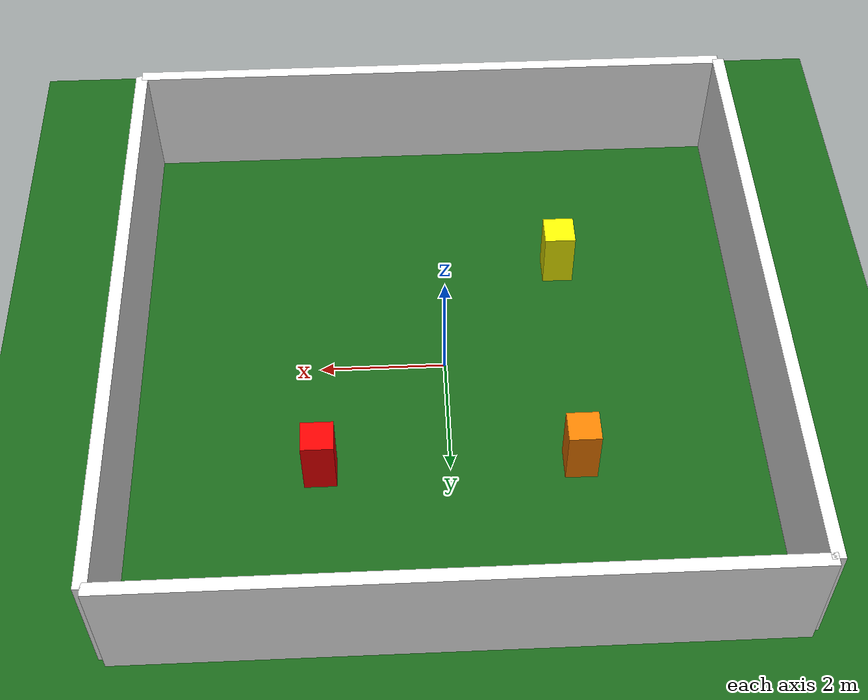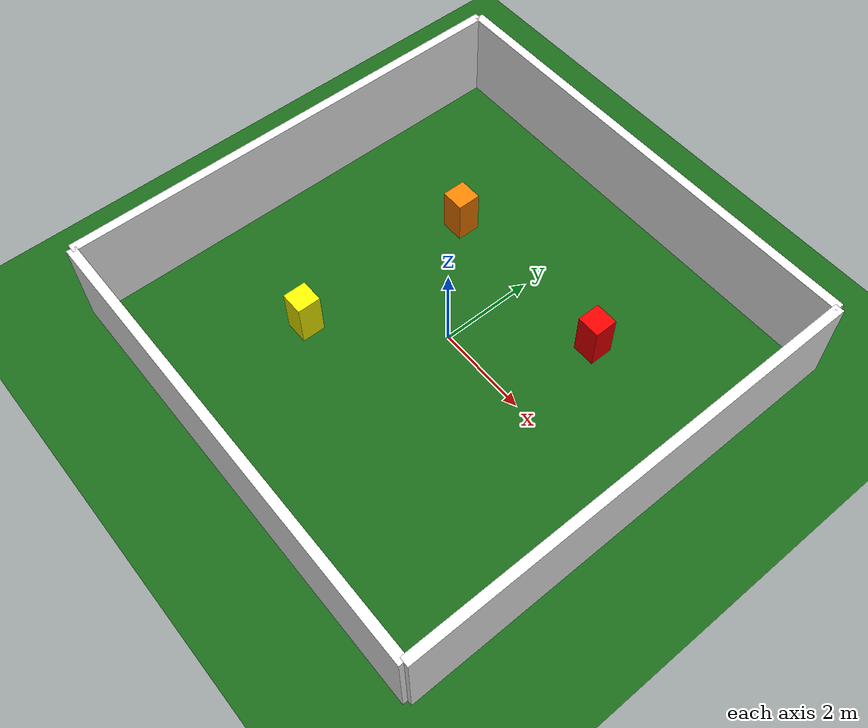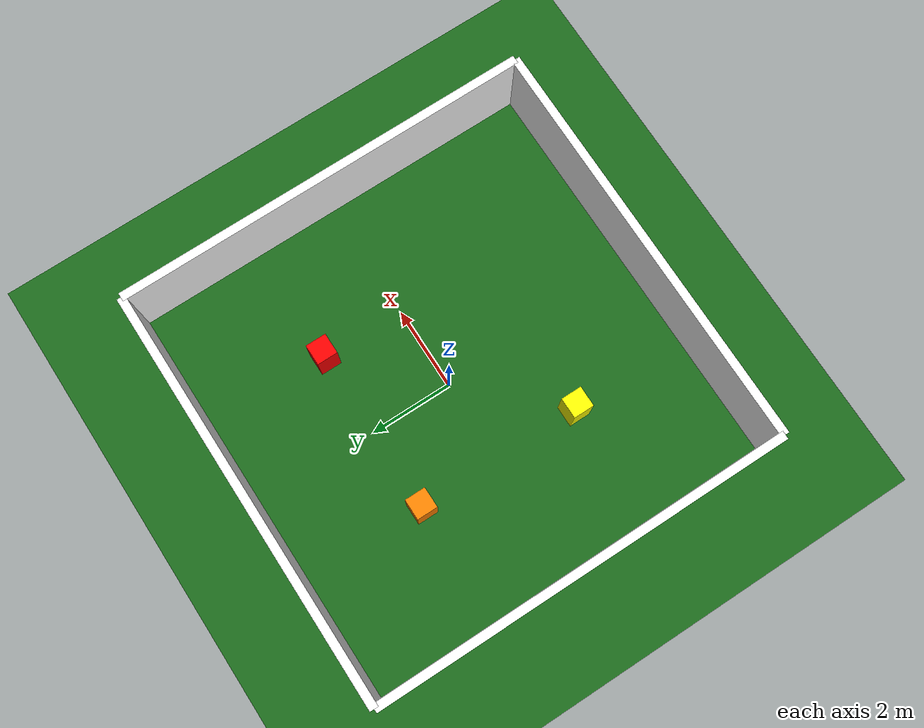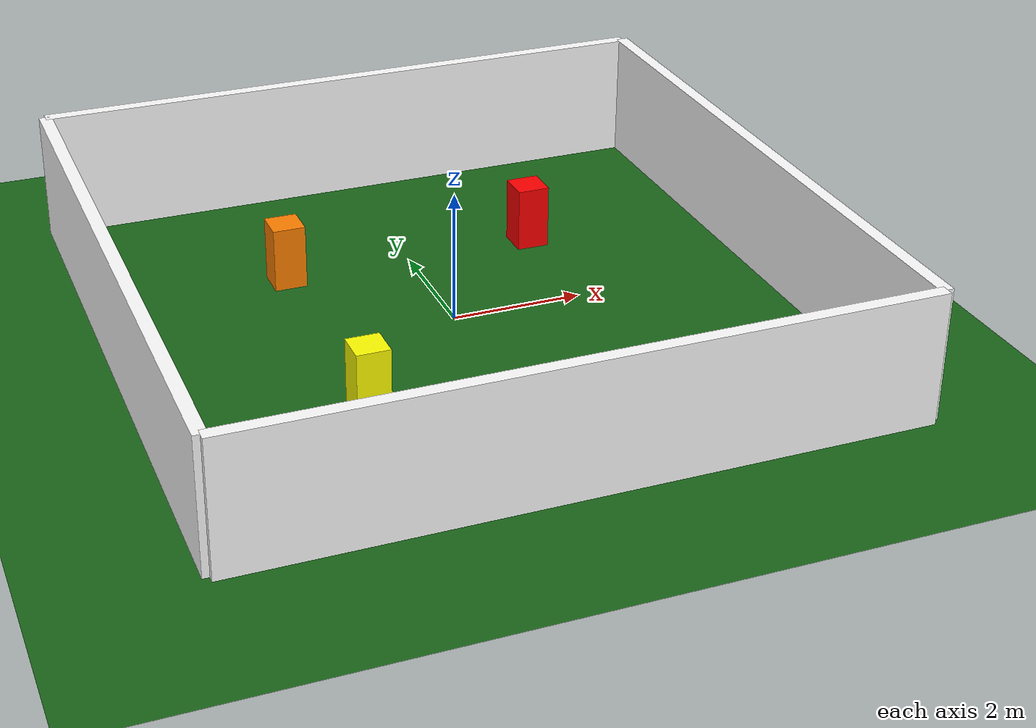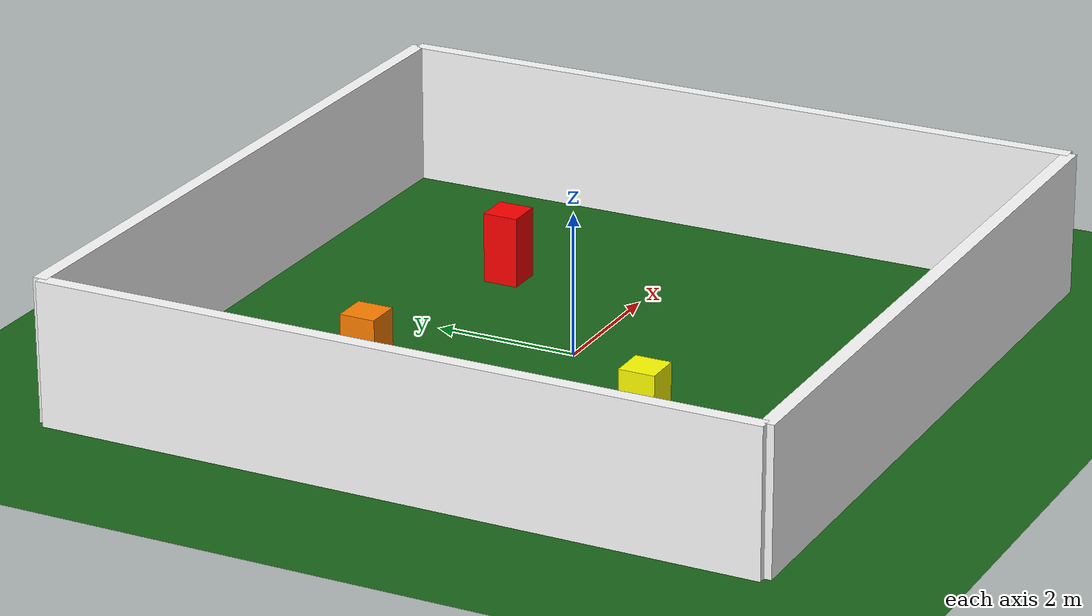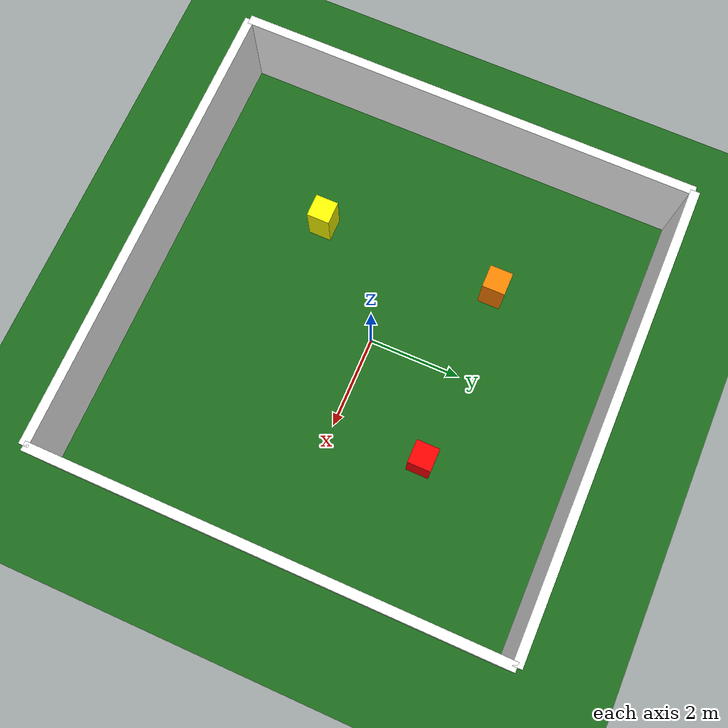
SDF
<?xml version="1.0" ?>
<sdf version="1.6">
  <world name="room">

    <plugin filename="ignition-gazebo-physics-system"
            name="ignition::gazebo::systems::Physics"/>
    <plugin filename="ignition-gazebo-user-commands-system"
            name="ignition::gazebo::systems::UserCommands"/>
    <plugin filename="ignition-gazebo-scene-broadcaster-system"
            name="ignition::gazebo::systems::SceneBroadcaster"/>

    <light type="directional" name="sun">
      <cast_shadows>true</cast_shadows>
      <pose>0 0 10 0 0 0</pose>
      <diffuse>1 1 1 1</diffuse>
      <specular>0.5 0.5 0.5 1</specular>
      <direction>-0.5 0.1 -0.9</direction>
    </light>

    <model name="ground_plane">
      <static>true</static>
      <link name="link">
        <collision name="collision">
          <geometry><plane><normal>0 0 1</normal></plane></geometry>
        </collision>
        <visual name="visual">
          <geometry><plane><normal>0 0 1</normal><size>100 100</size></plane></geometry>
          <material>
            <ambient>0.1 0.4 0.1 1</ambient>
            <diffuse>0.1 0.4 0.1 1</diffuse>
          </material>
        </visual>
      </link>
    </model>

    <model name="wall_north">
      <static>true</static>
      <pose>0 5 1 0 0 0</pose>
      <link name="link">
        <collision name="collision">
          <geometry><box><size>10 0.2 2</size></box></geometry>
        </collision>
        <visual name="visual">
          <geometry><box><size>10 0.2 2</size></box></geometry>
          <material>
            <ambient>1 1 1 1</ambient>
            <diffuse>1 1 1 1</diffuse>
          </material>
        </visual>
      </link>
    </model>

    <model name="wall_south">
      <static>true</static>
      <pose>0 -5 1 0 0 0</pose>
      <link name="link">
        <collision name="collision">
          <geometry><box><size>10 0.2 2</size></box></geometry>
        </collision>
        <visual name="visual">
          <geometry><box><size>10 0.2 2</size></box></geometry>
          <material>
            <ambient>1 1 1 1</ambient>
            <diffuse>1 1 1 1</diffuse>
          </material>
        </visual>
      </link>
    </model>

    <model name="wall_east">
      <static>true</static>
      <pose>5 0 1 0 0 0</pose>
      <link name="link">
        <collision name="collision">
          <geometry><box><size>0.2 10 2</size></box></geometry>
        </collision>
        <visual name="visual">
          <geometry><box><size>0.2 10 2</size></box></geometry>
          <material>
            <ambient>1 1 1 1</ambient>
            <diffuse>1 1 1 1</diffuse>
          </material>
        </visual>
      </link>
    </model>

    <model name="wall_west">
      <static>true</static>
      <pose>-5 0 1 0 0 0</pose>
      <link name="link">
        <collision name="collision">
          <geometry><box><size>0.2 10 2</size></box></geometry>
        </collision>
        <visual name="visual">
          <geometry><box><size>0.2 10 2</size></box></geometry>
          <material>
            <ambient>1 1 1 1</ambient>
            <diffuse>1 1 1 1</diffuse>
          </material>
        </visual>
      </link>
    </model>

    <model name="box1">
      <static>true</static>
      <pose>2 2 0.5 0 0 0</pose>
      <link name="link">
        <collision name="collision">
          <geometry><box><size>0.5 0.5 1</size></box></geometry>
        </collision>
        <visual name="visual">
          <geometry><box><size>0.5 0.5 1</size></box></geometry>
          <material>
            <ambient>1 0 0 1</ambient>
            <diffuse>1 0 0 1</diffuse>
          </material>
        </visual>
      </link>
    </model>

    <model name="box2">
      <static>true</static>
      <pose>-2 -2 0.5 0 0 0</pose>
      <link name="link">
        <collision name="collision">
          <geometry><box><size>0.5 0.5 1</size></box></geometry>
        </collision>
        <visual name="visual">
          <geometry><box><size>0.5 0.5 1</size></box></geometry>
          <material>
            <ambient>1 1 0 1</ambient>
            <diffuse>1 1 0 1</diffuse>
          </material>
        </visual>
      </link>
    </model>

    <model name="box3">
      <static>true</static>
      <pose>-2 2 0.5 0 0 0</pose>
      <link name="link">
        <collision name="collision">
          <geometry><box><size>0.5 0.5 1</size></box></geometry>
        </collision>
        <visual name="visual">
          <geometry><box><size>0.5 0.5 1</size></box></geometry>
          <material>
            <ambient>1 0.5 0 1</ambient>
            <diffuse>1 0.5 0 1</diffuse>
          </material>
        </visual>
      </link>
    </model>

  </world>
</sdf>
